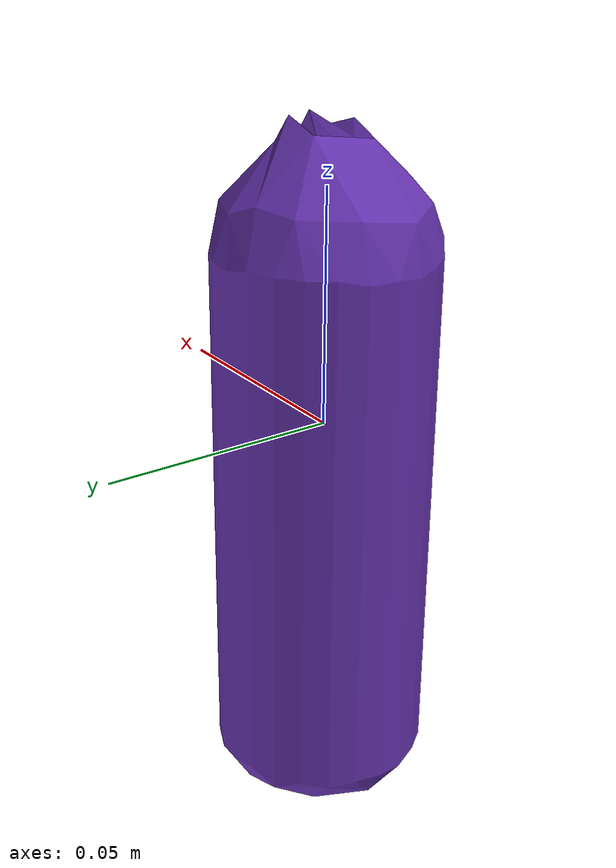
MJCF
<mujoco model="top_watertight_tiny">
  <default>
    <default group="2" type="mesh" contype="0" conaffinity="0">
      <geom group="2" type="mesh" contype="0" conaffinity="0"/>
    </default>
    <default group="3" type="mesh">
      <geom group="3" type="mesh"/>
    </default>
  </default>
  <asset>
    <mesh file="top_watertight_tiny.obj"/>
    <mesh file="top_watertight_tiny_collision_0.obj"/>
    <mesh file="top_watertight_tiny_collision_1.obj"/>
    <mesh file="top_watertight_tiny_collision_2.obj"/>
    <mesh file="top_watertight_tiny_collision_3.obj"/>
    <mesh file="top_watertight_tiny_collision_4.obj"/>
    <mesh file="top_watertight_tiny_collision_5.obj"/>
    <mesh file="top_watertight_tiny_collision_6.obj"/>
    <mesh file="top_watertight_tiny_collision_7.obj"/>
    <mesh file="top_watertight_tiny_collision_8.obj"/>
    <mesh file="top_watertight_tiny_collision_9.obj"/>
    <mesh file="top_watertight_tiny_collision_10.obj"/>
    <mesh file="top_watertight_tiny_collision_11.obj"/>
    <mesh file="top_watertight_tiny_collision_12.obj"/>
    <mesh file="top_watertight_tiny_collision_13.obj"/>
    <mesh file="top_watertight_tiny_collision_14.obj"/>
    <mesh file="top_watertight_tiny_collision_15.obj"/>
    <mesh file="top_watertight_tiny_collision_16.obj"/>
    <mesh file="top_watertight_tiny_collision_17.obj"/>
    <mesh file="top_watertight_tiny_collision_18.obj"/>
    <mesh file="top_watertight_tiny_collision_19.obj"/>
    <mesh file="top_watertight_tiny_collision_20.obj"/>
    <mesh file="top_watertight_tiny_collision_21.obj"/>
    <mesh file="top_watertight_tiny_collision_22.obj"/>
    <mesh file="top_watertight_tiny_collision_23.obj"/>
    <mesh file="top_watertight_tiny_collision_24.obj"/>
    <mesh file="top_watertight_tiny_collision_25.obj"/>
    <mesh file="top_watertight_tiny_collision_26.obj"/>
    <mesh file="top_watertight_tiny_collision_27.obj"/>
    <mesh file="top_watertight_tiny_collision_28.obj"/>
    <mesh file="top_watertight_tiny_collision_29.obj"/>
    <mesh file="top_watertight_tiny_collision_30.obj"/>
    <mesh file="top_watertight_tiny_collision_31.obj"/>
    <mesh file="top_watertight_tiny_collision_32.obj"/>
    <mesh file="top_watertight_tiny_collision_33.obj"/>
    <mesh file="top_watertight_tiny_collision_34.obj"/>
    <mesh file="top_watertight_tiny_collision_35.obj"/>
    <mesh file="top_watertight_tiny_collision_36.obj"/>
  </asset>
  <worldbody>
    <body name="top_watertight_tiny">
      <freejoint/>
      <geom mesh="top_watertight_tiny" group="2" type="mesh" rgba="0.4 0.2 0.7 1" contype="0" conaffinity="0"/>
      <geom mesh="top_watertight_tiny_collision_0" rgba="0.7639131796229641 0.8766174646966979 0.84592390301641 1" group="3" type="mesh"/>
      <geom mesh="top_watertight_tiny_collision_1" rgba="0.19510721336041992 0.7987230168485298 0.9120150826801752 1" group="3" type="mesh"/>
      <geom mesh="top_watertight_tiny_collision_2" rgba="0.9602540300898867 0.8270701579940186 0.8924194395684479 1" group="3" type="mesh"/>
      <geom mesh="top_watertight_tiny_collision_3" rgba="0.15298178990234457 0.6684590594172674 0.7716984160903877 1" group="3" type="mesh"/>
      <geom mesh="top_watertight_tiny_collision_4" rgba="0.58464338885555 0.4945434229659038 0.4750791218380328 1" group="3" type="mesh"/>
      <geom mesh="top_watertight_tiny_collision_5" rgba="0.4601047467938191 0.2160642820322619 0.7561873815878265 1" group="3" type="mesh"/>
      <geom mesh="top_watertight_tiny_collision_6" rgba="0.2959025538195038 0.7032097822555691 0.18761564830547317 1" group="3" type="mesh"/>
      <geom mesh="top_watertight_tiny_collision_7" rgba="0.7169793740565072 0.5761407707422053 0.22744858187672734 1" group="3" type="mesh"/>
      <geom mesh="top_watertight_tiny_collision_8" rgba="0.1307638791836434 0.3065480760086786 0.7687001497967263 1" group="3" type="mesh"/>
      <geom mesh="top_watertight_tiny_collision_9" rgba="0.10890787358804177 0.784763120940705 0.4915728737176337 1" group="3" type="mesh"/>
      <geom mesh="top_watertight_tiny_collision_10" rgba="0.9780890256800918 0.7475122147847815 0.7068656836181546 1" group="3" type="mesh"/>
      <geom mesh="top_watertight_tiny_collision_11" rgba="0.2506220678483987 0.5373837416915994 0.9608969145724282 1" group="3" type="mesh"/>
      <geom mesh="top_watertight_tiny_collision_12" rgba="0.645609437624362 0.7030347403907194 0.7968083338602769 1" group="3" type="mesh"/>
      <geom mesh="top_watertight_tiny_collision_13" rgba="0.5619024916672556 0.7367007362024118 0.9072824838928428 1" group="3" type="mesh"/>
      <geom mesh="top_watertight_tiny_collision_14" rgba="0.6770641619365368 0.6389454421997466 0.3428296104017664 1" group="3" type="mesh"/>
      <geom mesh="top_watertight_tiny_collision_15" rgba="0.40410237035899976 0.6487599156065581 0.9279989628421783 1" group="3" type="mesh"/>
      <geom mesh="top_watertight_tiny_collision_16" rgba="0.007504496079856149 0.15764836382406144 0.9603950291772815 1" group="3" type="mesh"/>
      <geom mesh="top_watertight_tiny_collision_17" rgba="0.19496105483289294 0.7262193248307516 0.584420613435376 1" group="3" type="mesh"/>
      <geom mesh="top_watertight_tiny_collision_18" rgba="0.04987727353918392 0.1395307956509042 0.18204156767560198 1" group="3" type="mesh"/>
      <geom mesh="top_watertight_tiny_collision_19" rgba="0.5995248258010721 0.18310495799447113 0.8793140058193356 1" group="3" type="mesh"/>
      <geom mesh="top_watertight_tiny_collision_20" rgba="0.5277131052826484 0.03456818763062319 0.6095338758826968 1" group="3" type="mesh"/>
      <geom mesh="top_watertight_tiny_collision_21" rgba="0.6166677694327913 0.6264601628174831 0.2184817010494029 1" group="3" type="mesh"/>
      <geom mesh="top_watertight_tiny_collision_22" rgba="0.7102041265512519 0.7002672895857274 0.02212696242653689 1" group="3" type="mesh"/>
      <geom mesh="top_watertight_tiny_collision_23" rgba="0.08001569328377245 0.6924060442300365 0.8178750956627043 1" group="3" type="mesh"/>
      <geom mesh="top_watertight_tiny_collision_24" rgba="0.04471000420996185 0.7066463699724858 0.7827603011706414 1" group="3" type="mesh"/>
      <geom mesh="top_watertight_tiny_collision_25" rgba="0.5283444125332001 0.6581429813256201 0.551031836223589 1" group="3" type="mesh"/>
      <geom mesh="top_watertight_tiny_collision_26" rgba="0.3022475832179793 0.9149638373864749 0.7333979811387425 1" group="3" type="mesh"/>
      <geom mesh="top_watertight_tiny_collision_27" rgba="0.893281969260742 0.03795587646726628 0.32893539912938696 1" group="3" type="mesh"/>
      <geom mesh="top_watertight_tiny_collision_28" rgba="0.9094240134952587 0.6339879588056984 0.7976324502315822 1" group="3" type="mesh"/>
      <geom mesh="top_watertight_tiny_collision_29" rgba="0.4633556792218282 0.5275787242084681 0.5475225953091643 1" group="3" type="mesh"/>
      <geom mesh="top_watertight_tiny_collision_30" rgba="0.5353972680837177 0.6747318857295015 0.41134759567536316 1" group="3" type="mesh"/>
      <geom mesh="top_watertight_tiny_collision_31" rgba="0.7787796308839616 0.37187447519404837 0.08521890751006556 1" group="3" type="mesh"/>
      <geom mesh="top_watertight_tiny_collision_32" rgba="0.59077444678266 0.03400599660107928 0.3569970660589773 1" group="3" type="mesh"/>
      <geom mesh="top_watertight_tiny_collision_33" rgba="0.7453966552439302 0.12250132301758254 0.3913120432382262 1" group="3" type="mesh"/>
      <geom mesh="top_watertight_tiny_collision_34" rgba="0.15481366485193715 0.8658717182644121 0.6147008026464785 1" group="3" type="mesh"/>
      <geom mesh="top_watertight_tiny_collision_35" rgba="0.48377483204822336 0.3395572748846186 0.05324692686646837 1" group="3" type="mesh"/>
      <geom mesh="top_watertight_tiny_collision_36" rgba="0.5991884680051638 0.19458855608337533 0.27392460886472236 1" group="3" type="mesh"/>
    </body>
  </worldbody>
</mujoco>
